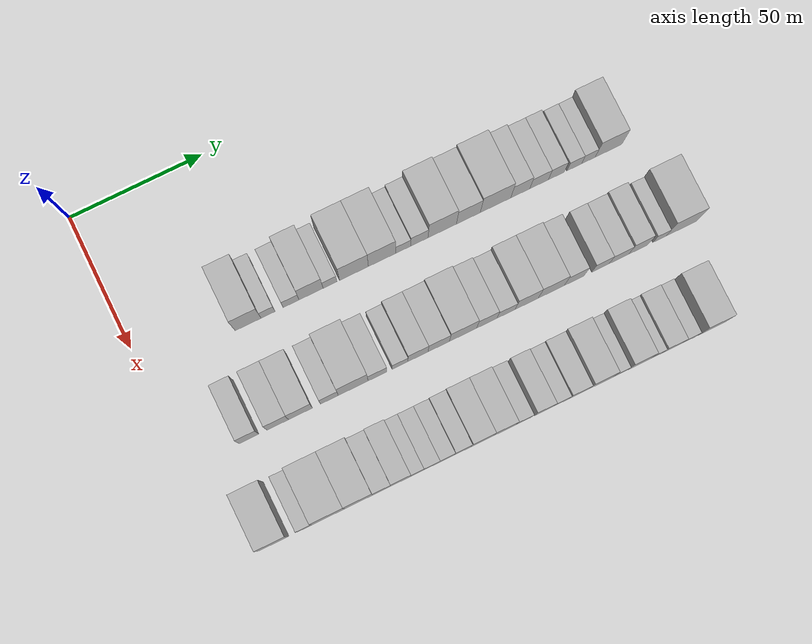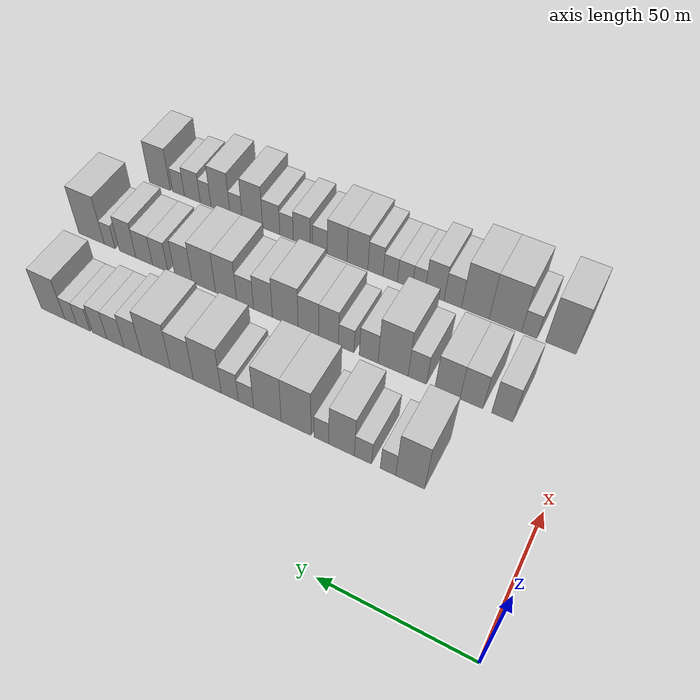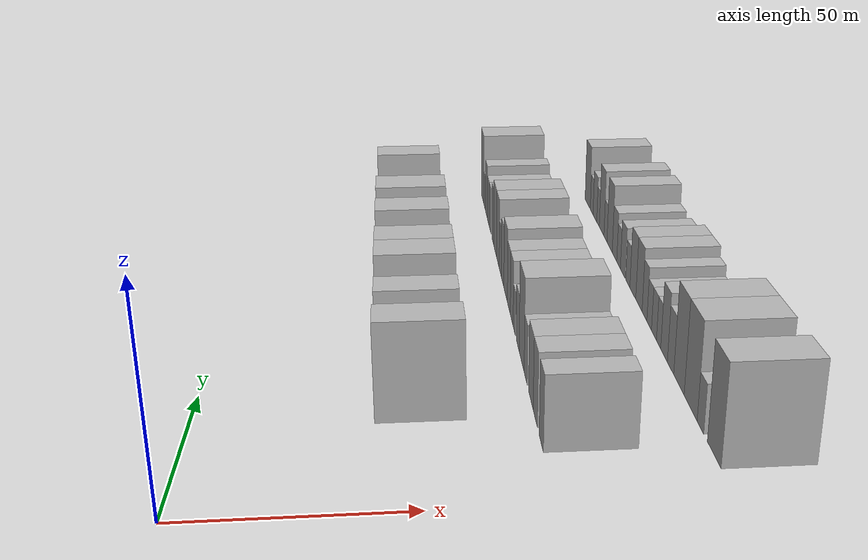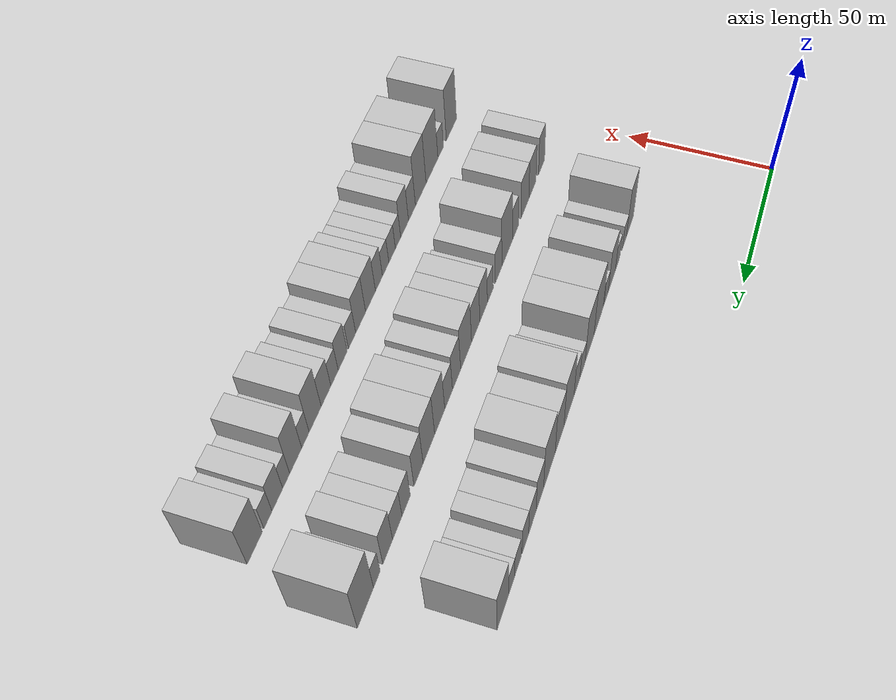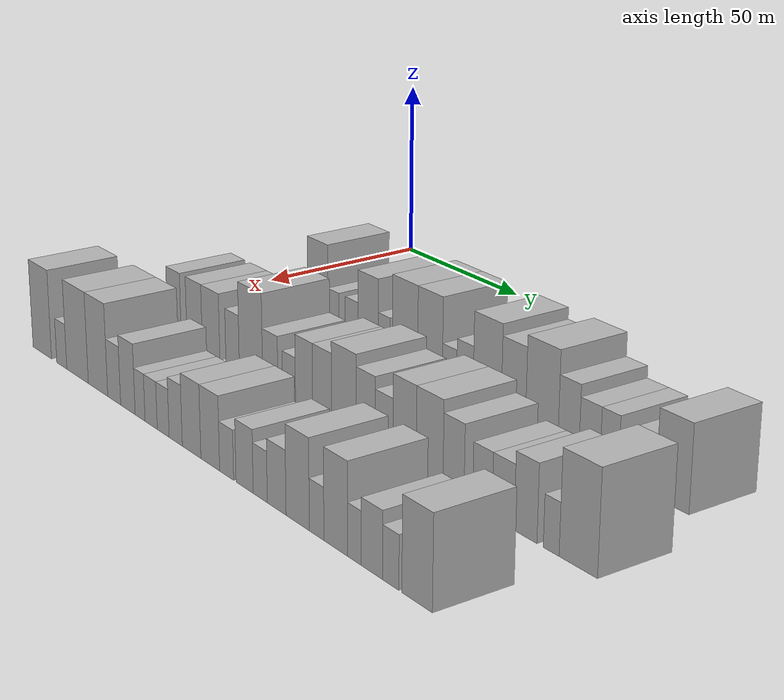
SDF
<sdf version="1.6">
 <world name="default">
  <model name="building_40">
   <static>1</static>
   <pose>50.0000 39.1611 0 0.000000 0.000000 0.000000</pose>
   <link name="link">
    <pose>0 0 12.00 0 0 0</pose>
    <collision name="collision"><geometry><box><size>20.0000 9.7006 24.0000</size></box></geometry></collision>
    <visual name="visual">
     <cast_shadows>0</cast_shadows>
     <geometry><box><size>20.0000 9.7006 24.0000</size></box></geometry>
     <material>
      <script>
       <uri>model://HANNAS_wall/materials/scripts</uri>
       <uri>model://HANNAS_wall/materials/textures</uri>
       <name>vrc/HANNAS_wall</name>
      </script>
     </material>
    </visual>
   </link>
  </model>
  <model name="building_41">
   <static>1</static>
   <pose>50.0000 46.6222 0 0.000000 0.000000 0.000000</pose>
   <link name="link">
    <pose>0 0 6.00 0 0 0</pose>
    <collision name="collision"><geometry><box><size>20.0000 5.2216 12.0000</size></box></geometry></collision>
    <visual name="visual">
     <cast_shadows>0</cast_shadows>
     <geometry><box><size>20.0000 5.2216 12.0000</size></box></geometry>
     <material>
      <script>
       <uri>model://HANNAS_wall/materials/scripts</uri>
       <uri>model://HANNAS_wall/materials/textures</uri>
       <name>vrc/HANNAS_wall</name>
      </script>
     </material>
    </visual>
   </link>
  </model>
  <model name="building_42">
   <static>1</static>
   <pose>50.0000 55.2175 0 0.000000 0.000000 0.000000</pose>
   <link name="link">
    <pose>0 0 6.00 0 0 0</pose>
    <collision name="collision"><geometry><box><size>20.0000 5.9689 12.0000</size></box></geometry></collision>
    <visual name="visual">
     <cast_shadows>0</cast_shadows>
     <geometry><box><size>20.0000 5.9689 12.0000</size></box></geometry>
     <material>
      <script>
       <uri>model://HANNAS_wall/materials/scripts</uri>
       <uri>model://HANNAS_wall/materials/textures</uri>
       <name>vrc/HANNAS_wall</name>
      </script>
     </material>
    </visual>
   </link>
  </model>
  <model name="building_43">
   <static>1</static>
   <pose>50.0000 62.7230 0 0.000000 0.000000 0.000000</pose>
   <link name="link">
    <pose>0 0 10.50 0 0 0</pose>
    <collision name="collision"><geometry><box><size>20.0000 9.0422 21.0000</size></box></geometry></collision>
    <visual name="visual">
     <cast_shadows>0</cast_shadows>
     <geometry><box><size>20.0000 9.0422 21.0000</size></box></geometry>
     <material>
      <script>
       <uri>model://HANNAS_wall/materials/scripts</uri>
       <uri>model://HANNAS_wall/materials/textures</uri>
       <name>vrc/HANNAS_wall</name>
      </script>
     </material>
    </visual>
   </link>
  </model>
  <model name="building_44">
   <static>1</static>
   <pose>50.0000 69.8419 0 0.000000 0.000000 0.000000</pose>
   <link name="link">
    <pose>0 0 6.00 0 0 0</pose>
    <collision name="collision"><geometry><box><size>20.0000 5.1956 12.0000</size></box></geometry></collision>
    <visual name="visual">
     <cast_shadows>0</cast_shadows>
     <geometry><box><size>20.0000 5.1956 12.0000</size></box></geometry>
     <material>
      <script>
       <uri>model://HANNAS_wall/materials/scripts</uri>
       <uri>model://HANNAS_wall/materials/textures</uri>
       <name>vrc/HANNAS_wall</name>
      </script>
     </material>
    </visual>
   </link>
  </model>
  <model name="building_45">
   <static>1</static>
   <pose>50.0000 78.8561 0 0.000000 0.000000 0.000000</pose>
   <link name="link">
    <pose>0 0 12.00 0 0 0</pose>
    <collision name="collision"><geometry><box><size>20.0000 10.8327 24.0000</size></box></geometry></collision>
    <visual name="visual">
     <cast_shadows>0</cast_shadows>
     <geometry><box><size>20.0000 10.8327 24.0000</size></box></geometry>
     <material>
      <script>
       <uri>model://HANNAS_wall/materials/scripts</uri>
       <uri>model://HANNAS_wall/materials/textures</uri>
       <name>vrc/HANNAS_wall</name>
      </script>
     </material>
    </visual>
   </link>
  </model>
  <model name="building_46">
   <static>1</static>
   <pose>50.0000 89.3941 0 0.000000 0.000000 0.000000</pose>
   <link name="link">
    <pose>0 0 12.00 0 0 0</pose>
    <collision name="collision"><geometry><box><size>20.0000 10.2433 24.0000</size></box></geometry></collision>
    <visual name="visual">
     <cast_shadows>0</cast_shadows>
     <geometry><box><size>20.0000 10.2433 24.0000</size></box></geometry>
     <material>
      <script>
       <uri>model://HANNAS_wall/materials/scripts</uri>
       <uri>model://HANNAS_wall/materials/textures</uri>
       <name>vrc/HANNAS_wall</name>
      </script>
     </material>
    </visual>
   </link>
  </model>
  <model name="building_47">
   <static>1</static>
   <pose>50.0000 97.3932 0 0.000000 0.000000 0.000000</pose>
   <link name="link">
    <pose>0 0 6.00 0 0 0</pose>
    <collision name="collision"><geometry><box><size>20.0000 5.7550 12.0000</size></box></geometry></collision>
    <visual name="visual">
     <cast_shadows>0</cast_shadows>
     <geometry><box><size>20.0000 5.7550 12.0000</size></box></geometry>
     <material>
      <script>
       <uri>model://HANNAS_wall/materials/scripts</uri>
       <uri>model://HANNAS_wall/materials/textures</uri>
       <name>vrc/HANNAS_wall</name>
      </script>
     </material>
    </visual>
   </link>
  </model>
  <model name="building_48">
   <static>1</static>
   <pose>50.0000 103.5259 0 0.000000 0.000000 0.000000</pose>
   <link name="link">
    <pose>0 0 7.50 0 0 0</pose>
    <collision name="collision"><geometry><box><size>20.0000 6.5104 15.0000</size></box></geometry></collision>
    <visual name="visual">
     <cast_shadows>0</cast_shadows>
     <geometry><box><size>20.0000 6.5104 15.0000</size></box></geometry>
     <material>
      <script>
       <uri>model://HANNAS_wall/materials/scripts</uri>
       <uri>model://HANNAS_wall/materials/textures</uri>
       <name>vrc/HANNAS_wall</name>
      </script>
     </material>
    </visual>
   </link>
  </model>
  <model name="building_49">
   <static>1</static>
   <pose>50.0000 112.1810 0 0.000000 0.000000 0.000000</pose>
   <link name="link">
    <pose>0 0 12.00 0 0 0</pose>
    <collision name="collision"><geometry><box><size>20.0000 10.7998 24.0000</size></box></geometry></collision>
    <visual name="visual">
     <cast_shadows>0</cast_shadows>
     <geometry><box><size>20.0000 10.7998 24.0000</size></box></geometry>
     <material>
      <script>
       <uri>model://HANNAS_wall/materials/scripts</uri>
       <uri>model://HANNAS_wall/materials/textures</uri>
       <name>vrc/HANNAS_wall</name>
      </script>
     </material>
    </visual>
   </link>
  </model>
  <model name="building_50">
   <static>1</static>
   <pose>50.0000 122.1033 0 0.000000 0.000000 0.000000</pose>
   <link name="link">
    <pose>0 0 10.50 0 0 0</pose>
    <collision name="collision"><geometry><box><size>20.0000 9.0449 21.0000</size></box></geometry></collision>
    <visual name="visual">
     <cast_shadows>0</cast_shadows>
     <geometry><box><size>20.0000 9.0449 21.0000</size></box></geometry>
     <material>
      <script>
       <uri>model://HANNAS_wall/materials/scripts</uri>
       <uri>model://HANNAS_wall/materials/textures</uri>
       <name>vrc/HANNAS_wall</name>
      </script>
     </material>
    </visual>
   </link>
  </model>
  <model name="building_51">
   <static>1</static>
   <pose>50.0000 132.4402 0 0.000000 0.000000 0.000000</pose>
   <link name="link">
    <pose>0 0 12.00 0 0 0</pose>
    <collision name="collision"><geometry><box><size>20.0000 11.6288 24.0000</size></box></geometry></collision>
    <visual name="visual">
     <cast_shadows>0</cast_shadows>
     <geometry><box><size>20.0000 11.6288 24.0000</size></box></geometry>
     <material>
      <script>
       <uri>model://HANNAS_wall/materials/scripts</uri>
       <uri>model://HANNAS_wall/materials/textures</uri>
       <name>vrc/HANNAS_wall</name>
      </script>
     </material>
    </visual>
   </link>
  </model>
  <model name="building_52">
   <static>1</static>
   <pose>50.0000 141.8896 0 0.000000 0.000000 0.000000</pose>
   <link name="link">
    <pose>0 0 9.00 0 0 0</pose>
    <collision name="collision"><geometry><box><size>20.0000 7.2701 18.0000</size></box></geometry></collision>
    <visual name="visual">
     <cast_shadows>0</cast_shadows>
     <geometry><box><size>20.0000 7.2701 18.0000</size></box></geometry>
     <material>
      <script>
       <uri>model://HANNAS_wall/materials/scripts</uri>
       <uri>model://HANNAS_wall/materials/textures</uri>
       <name>vrc/HANNAS_wall</name>
      </script>
     </material>
    </visual>
   </link>
  </model>
  <model name="building_53">
   <static>1</static>
   <pose>50.0000 149.0812 0 0.000000 0.000000 0.000000</pose>
   <link name="link">
    <pose>0 0 7.50 0 0 0</pose>
    <collision name="collision"><geometry><box><size>20.0000 7.1130 15.0000</size></box></geometry></collision>
    <visual name="visual">
     <cast_shadows>0</cast_shadows>
     <geometry><box><size>20.0000 7.1130 15.0000</size></box></geometry>
     <material>
      <script>
       <uri>model://HANNAS_wall/materials/scripts</uri>
       <uri>model://HANNAS_wall/materials/textures</uri>
       <name>vrc/HANNAS_wall</name>
      </script>
     </material>
    </visual>
   </link>
  </model>
  <model name="building_54">
   <static>1</static>
   <pose>50.0000 155.6776 0 0.000000 0.000000 0.000000</pose>
   <link name="link">
    <pose>0 0 7.50 0 0 0</pose>
    <collision name="collision"><geometry><box><size>20.0000 6.0799 15.0000</size></box></geometry></collision>
    <visual name="visual">
     <cast_shadows>0</cast_shadows>
     <geometry><box><size>20.0000 6.0799 15.0000</size></box></geometry>
     <material>
      <script>
       <uri>model://HANNAS_wall/materials/scripts</uri>
       <uri>model://HANNAS_wall/materials/textures</uri>
       <name>vrc/HANNAS_wall</name>
      </script>
     </material>
    </visual>
   </link>
  </model>
  <model name="building_55">
   <static>1</static>
   <pose>50.0000 162.5369 0 0.000000 0.000000 0.000000</pose>
   <link name="link">
    <pose>0 0 6.00 0 0 0</pose>
    <collision name="collision"><geometry><box><size>20.0000 5.6387 12.0000</size></box></geometry></collision>
    <visual name="visual">
     <cast_shadows>0</cast_shadows>
     <geometry><box><size>20.0000 5.6387 12.0000</size></box></geometry>
     <material>
      <script>
       <uri>model://HANNAS_wall/materials/scripts</uri>
       <uri>model://HANNAS_wall/materials/textures</uri>
       <name>vrc/HANNAS_wall</name>
      </script>
     </material>
    </visual>
   </link>
  </model>
  <model name="building_56">
   <static>1</static>
   <pose>50.0000 167.9550 0 0.000000 0.000000 0.000000</pose>
   <link name="link">
    <pose>0 0 6.00 0 0 0</pose>
    <collision name="collision"><geometry><box><size>20.0000 5.1975 12.0000</size></box></geometry></collision>
    <visual name="visual">
     <cast_shadows>0</cast_shadows>
     <geometry><box><size>20.0000 5.1975 12.0000</size></box></geometry>
     <material>
      <script>
       <uri>model://HANNAS_wall/materials/scripts</uri>
       <uri>model://HANNAS_wall/materials/textures</uri>
       <name>vrc/HANNAS_wall</name>
      </script>
     </material>
    </visual>
   </link>
  </model>
  <model name="building_57">
   <static>1</static>
   <pose>50.0000 175.6868 0 0.000000 0.000000 0.000000</pose>
   <link name="link">
    <pose>0 0 10.50 0 0 0</pose>
    <collision name="collision"><geometry><box><size>20.0000 10.2662 21.0000</size></box></geometry></collision>
    <visual name="visual">
     <cast_shadows>0</cast_shadows>
     <geometry><box><size>20.0000 10.2662 21.0000</size></box></geometry>
     <material>
      <script>
       <uri>model://HANNAS_wall/materials/scripts</uri>
       <uri>model://HANNAS_wall/materials/textures</uri>
       <name>vrc/HANNAS_wall</name>
      </script>
     </material>
    </visual>
   </link>
  </model>
  <model name="building_121">
   <static>1</static>
   <pose>85.0000 22.9556 0 0.000000 0.000000 0.000000</pose>
   <link name="link">
    <pose>0 0 9.00 0 0 0</pose>
    <collision name="collision"><geometry><box><size>20.0000 7.2562 18.0000</size></box></geometry></collision>
    <visual name="visual">
     <cast_shadows>0</cast_shadows>
     <geometry><box><size>20.0000 7.2562 18.0000</size></box></geometry>
     <material>
      <script>
       <uri>model://HANNAS_wall/materials/scripts</uri>
       <uri>model://HANNAS_wall/materials/textures</uri>
       <name>vrc/HANNAS_wall</name>
      </script>
     </material>
    </visual>
   </link>
  </model>
  <model name="building_122">
   <static>1</static>
   <pose>85.0000 33.5926 0 0.000000 0.000000 0.000000</pose>
   <link name="link">
    <pose>0 0 9.00 0 0 0</pose>
    <collision name="collision"><geometry><box><size>20.0000 8.0178 18.0000</size></box></geometry></collision>
    <visual name="visual">
     <cast_shadows>0</cast_shadows>
     <geometry><box><size>20.0000 8.0178 18.0000</size></box></geometry>
     <material>
      <script>
       <uri>model://HANNAS_wall/materials/scripts</uri>
       <uri>model://HANNAS_wall/materials/textures</uri>
       <name>vrc/HANNAS_wall</name>
      </script>
     </material>
    </visual>
   </link>
  </model>
  <model name="building_123">
   <static>1</static>
   <pose>85.0000 42.0338 0 0.000000 0.000000 0.000000</pose>
   <link name="link">
    <pose>0 0 9.00 0 0 0</pose>
    <collision name="collision"><geometry><box><size>20.0000 8.8647 18.0000</size></box></geometry></collision>
    <visual name="visual">
     <cast_shadows>0</cast_shadows>
     <geometry><box><size>20.0000 8.8647 18.0000</size></box></geometry>
     <material>
      <script>
       <uri>model://HANNAS_wall/materials/scripts</uri>
       <uri>model://HANNAS_wall/materials/textures</uri>
       <name>vrc/HANNAS_wall</name>
      </script>
     </material>
    </visual>
   </link>
  </model>
  <model name="building_124">
   <static>1</static>
   <pose>85.0000 52.7682 0 0.000000 0.000000 0.000000</pose>
   <link name="link">
    <pose>0 0 7.50 0 0 0</pose>
    <collision name="collision"><geometry><box><size>20.0000 6.6041 15.0000</size></box></geometry></collision>
    <visual name="visual">
     <cast_shadows>0</cast_shadows>
     <geometry><box><size>20.0000 6.6041 15.0000</size></box></geometry>
     <material>
      <script>
       <uri>model://HANNAS_wall/materials/scripts</uri>
       <uri>model://HANNAS_wall/materials/textures</uri>
       <name>vrc/HANNAS_wall</name>
      </script>
     </material>
    </visual>
   </link>
  </model>
  <model name="building_125">
   <static>1</static>
   <pose>85.0000 61.6194 0 0.000000 0.000000 0.000000</pose>
   <link name="link">
    <pose>0 0 12.00 0 0 0</pose>
    <collision name="collision"><geometry><box><size>20.0000 11.0984 24.0000</size></box></geometry></collision>
    <visual name="visual">
     <cast_shadows>0</cast_shadows>
     <geometry><box><size>20.0000 11.0984 24.0000</size></box></geometry>
     <material>
      <script>
       <uri>model://HANNAS_wall/materials/scripts</uri>
       <uri>model://HANNAS_wall/materials/textures</uri>
       <name>vrc/HANNAS_wall</name>
      </script>
     </material>
    </visual>
   </link>
  </model>
  <model name="building_126">
   <static>1</static>
   <pose>85.0000 70.6845 0 0.000000 0.000000 0.000000</pose>
   <link name="link">
    <pose>0 0 7.50 0 0 0</pose>
    <collision name="collision"><geometry><box><size>20.0000 7.0317 15.0000</size></box></geometry></collision>
    <visual name="visual">
     <cast_shadows>0</cast_shadows>
     <geometry><box><size>20.0000 7.0317 15.0000</size></box></geometry>
     <material>
      <script>
       <uri>model://HANNAS_wall/materials/scripts</uri>
       <uri>model://HANNAS_wall/materials/textures</uri>
       <name>vrc/HANNAS_wall</name>
      </script>
     </material>
    </visual>
   </link>
  </model>
  <model name="building_127">
   <static>1</static>
   <pose>85.0000 79.1340 0 0.000000 0.000000 0.000000</pose>
   <link name="link">
    <pose>0 0 6.00 0 0 0</pose>
    <collision name="collision"><geometry><box><size>20.0000 5.8673 12.0000</size></box></geometry></collision>
    <visual name="visual">
     <cast_shadows>0</cast_shadows>
     <geometry><box><size>20.0000 5.8673 12.0000</size></box></geometry>
     <material>
      <script>
       <uri>model://HANNAS_wall/materials/scripts</uri>
       <uri>model://HANNAS_wall/materials/textures</uri>
       <name>vrc/HANNAS_wall</name>
      </script>
     </material>
    </visual>
   </link>
  </model>
  <model name="building_128">
   <static>1</static>
   <pose>85.0000 85.8305 0 0.000000 0.000000 0.000000</pose>
   <link name="link">
    <pose>0 0 9.00 0 0 0</pose>
    <collision name="collision"><geometry><box><size>20.0000 7.5258 18.0000</size></box></geometry></collision>
    <visual name="visual">
     <cast_shadows>0</cast_shadows>
     <geometry><box><size>20.0000 7.5258 18.0000</size></box></geometry>
     <material>
      <script>
       <uri>model://HANNAS_wall/materials/scripts</uri>
       <uri>model://HANNAS_wall/materials/textures</uri>
       <name>vrc/HANNAS_wall</name>
      </script>
     </material>
    </visual>
   </link>
  </model>
  <model name="building_129">
   <static>1</static>
   <pose>85.0000 93.6277 0 0.000000 0.000000 0.000000</pose>
   <link name="link">
    <pose>0 0 9.00 0 0 0</pose>
    <collision name="collision"><geometry><box><size>20.0000 8.0686 18.0000</size></box></geometry></collision>
    <visual name="visual">
     <cast_shadows>0</cast_shadows>
     <geometry><box><size>20.0000 8.0686 18.0000</size></box></geometry>
     <material>
      <script>
       <uri>model://HANNAS_wall/materials/scripts</uri>
       <uri>model://HANNAS_wall/materials/textures</uri>
       <name>vrc/HANNAS_wall</name>
      </script>
     </material>
    </visual>
   </link>
  </model>
  <model name="building_130">
   <static>1</static>
   <pose>85.0000 102.7745 0 0.000000 0.000000 0.000000</pose>
   <link name="link">
    <pose>0 0 10.50 0 0 0</pose>
    <collision name="collision"><geometry><box><size>20.0000 10.2250 21.0000</size></box></geometry></collision>
    <visual name="visual">
     <cast_shadows>0</cast_shadows>
     <geometry><box><size>20.0000 10.2250 21.0000</size></box></geometry>
     <material>
      <script>
       <uri>model://HANNAS_wall/materials/scripts</uri>
       <uri>model://HANNAS_wall/materials/textures</uri>
       <name>vrc/HANNAS_wall</name>
      </script>
     </material>
    </visual>
   </link>
  </model>
  <model name="building_131">
   <static>1</static>
   <pose>85.0000 111.6667 0 0.000000 0.000000 0.000000</pose>
   <link name="link">
    <pose>0 0 9.00 0 0 0</pose>
    <collision name="collision"><geometry><box><size>20.0000 7.5595 18.0000</size></box></geometry></collision>
    <visual name="visual">
     <cast_shadows>0</cast_shadows>
     <geometry><box><size>20.0000 7.5595 18.0000</size></box></geometry>
     <material>
      <script>
       <uri>model://HANNAS_wall/materials/scripts</uri>
       <uri>model://HANNAS_wall/materials/textures</uri>
       <name>vrc/HANNAS_wall</name>
      </script>
     </material>
    </visual>
   </link>
  </model>
  <model name="building_132">
   <static>1</static>
   <pose>85.0000 118.8960 0 0.000000 0.000000 0.000000</pose>
   <link name="link">
    <pose>0 0 7.50 0 0 0</pose>
    <collision name="collision"><geometry><box><size>20.0000 6.8991 15.0000</size></box></geometry></collision>
    <visual name="visual">
     <cast_shadows>0</cast_shadows>
     <geometry><box><size>20.0000 6.8991 15.0000</size></box></geometry>
     <material>
      <script>
       <uri>model://HANNAS_wall/materials/scripts</uri>
       <uri>model://HANNAS_wall/materials/textures</uri>
       <name>vrc/HANNAS_wall</name>
      </script>
     </material>
    </visual>
   </link>
  </model>
  <model name="building_133">
   <static>1</static>
   <pose>85.0000 126.7453 0 0.000000 0.000000 0.000000</pose>
   <link name="link">
    <pose>0 0 10.50 0 0 0</pose>
    <collision name="collision"><geometry><box><size>20.0000 8.7996 21.0000</size></box></geometry></collision>
    <visual name="visual">
     <cast_shadows>0</cast_shadows>
     <geometry><box><size>20.0000 8.7996 21.0000</size></box></geometry>
     <material>
      <script>
       <uri>model://HANNAS_wall/materials/scripts</uri>
       <uri>model://HANNAS_wall/materials/textures</uri>
       <name>vrc/HANNAS_wall</name>
      </script>
     </material>
    </visual>
   </link>
  </model>
  <model name="building_134">
   <static>1</static>
   <pose>85.0000 136.0705 0 0.000000 0.000000 0.000000</pose>
   <link name="link">
    <pose>0 0 10.50 0 0 0</pose>
    <collision name="collision"><geometry><box><size>20.0000 9.8508 21.0000</size></box></geometry></collision>
    <visual name="visual">
     <cast_shadows>0</cast_shadows>
     <geometry><box><size>20.0000 9.8508 21.0000</size></box></geometry>
     <material>
      <script>
       <uri>model://HANNAS_wall/materials/scripts</uri>
       <uri>model://HANNAS_wall/materials/textures</uri>
       <name>vrc/HANNAS_wall</name>
      </script>
     </material>
    </visual>
   </link>
  </model>
  <model name="building_135">
   <static>1</static>
   <pose>85.0000 144.7362 0 0.000000 0.000000 0.000000</pose>
   <link name="link">
    <pose>0 0 9.00 0 0 0</pose>
    <collision name="collision"><geometry><box><size>20.0000 7.4805 18.0000</size></box></geometry></collision>
    <visual name="visual">
     <cast_shadows>0</cast_shadows>
     <geometry><box><size>20.0000 7.4805 18.0000</size></box></geometry>
     <material>
      <script>
       <uri>model://HANNAS_wall/materials/scripts</uri>
       <uri>model://HANNAS_wall/materials/textures</uri>
       <name>vrc/HANNAS_wall</name>
      </script>
     </material>
    </visual>
   </link>
  </model>
  <model name="building_136">
   <static>1</static>
   <pose>85.0000 154.7896 0 0.000000 0.000000 0.000000</pose>
   <link name="link">
    <pose>0 0 7.50 0 0 0</pose>
    <collision name="collision"><geometry><box><size>20.0000 6.6264 15.0000</size></box></geometry></collision>
    <visual name="visual">
     <cast_shadows>0</cast_shadows>
     <geometry><box><size>20.0000 6.6264 15.0000</size></box></geometry>
     <material>
      <script>
       <uri>model://HANNAS_wall/materials/scripts</uri>
       <uri>model://HANNAS_wall/materials/textures</uri>
       <name>vrc/HANNAS_wall</name>
      </script>
     </material>
    </visual>
   </link>
  </model>
  <model name="building_137">
   <static>1</static>
   <pose>85.0000 161.7868 0 0.000000 0.000000 0.000000</pose>
   <link name="link">
    <pose>0 0 7.50 0 0 0</pose>
    <collision name="collision"><geometry><box><size>20.0000 7.3680 15.0000</size></box></geometry></collision>
    <visual name="visual">
     <cast_shadows>0</cast_shadows>
     <geometry><box><size>20.0000 7.3680 15.0000</size></box></geometry>
     <material>
      <script>
       <uri>model://HANNAS_wall/materials/scripts</uri>
       <uri>model://HANNAS_wall/materials/textures</uri>
       <name>vrc/HANNAS_wall</name>
      </script>
     </material>
    </visual>
   </link>
  </model>
  <model name="building_138">
   <static>1</static>
   <pose>85.0000 169.1542 0 0.000000 0.000000 0.000000</pose>
   <link name="link">
    <pose>0 0 9.00 0 0 0</pose>
    <collision name="collision"><geometry><box><size>20.0000 7.3668 18.0000</size></box></geometry></collision>
    <visual name="visual">
     <cast_shadows>0</cast_shadows>
     <geometry><box><size>20.0000 7.3668 18.0000</size></box></geometry>
     <material>
      <script>
       <uri>model://HANNAS_wall/materials/scripts</uri>
       <uri>model://HANNAS_wall/materials/textures</uri>
       <name>vrc/HANNAS_wall</name>
      </script>
     </material>
    </visual>
   </link>
  </model>
  <model name="building_139">
   <static>1</static>
   <pose>85.0000 177.3093 0 0.000000 0.000000 0.000000</pose>
   <link name="link">
    <pose>0 0 6.00 0 0 0</pose>
    <collision name="collision"><geometry><box><size>20.0000 4.9435 12.0000</size></box></geometry></collision>
    <visual name="visual">
     <cast_shadows>0</cast_shadows>
     <geometry><box><size>20.0000 4.9435 12.0000</size></box></geometry>
     <material>
      <script>
       <uri>model://HANNAS_wall/materials/scripts</uri>
       <uri>model://HANNAS_wall/materials/textures</uri>
       <name>vrc/HANNAS_wall</name>
      </script>
     </material>
    </visual>
   </link>
  </model>
  <model name="building_140">
   <static>1</static>
   <pose>85.0000 185.5911 0 0.000000 0.000000 0.000000</pose>
   <link name="link">
    <pose>0 0 12.00 0 0 0</pose>
    <collision name="collision"><geometry><box><size>20.0000 11.6200 24.0000</size></box></geometry></collision>
    <visual name="visual">
     <cast_shadows>0</cast_shadows>
     <geometry><box><size>20.0000 11.6200 24.0000</size></box></geometry>
     <material>
      <script>
       <uri>model://HANNAS_wall/materials/scripts</uri>
       <uri>model://HANNAS_wall/materials/textures</uri>
       <name>vrc/HANNAS_wall</name>
      </script>
     </material>
    </visual>
   </link>
  </model>
  <model name="building_203">
   <static>1</static>
   <pose>120.0000 15.5896 0 0.000000 0.000000 0.000000</pose>
   <link name="link">
    <pose>0 0 12.00 0 0 0</pose>
    <collision name="collision"><geometry><box><size>20.0000 10.8165 24.0000</size></box></geometry></collision>
    <visual name="visual">
     <cast_shadows>0</cast_shadows>
     <geometry><box><size>20.0000 10.8165 24.0000</size></box></geometry>
     <material>
      <script>
       <uri>model://HANNAS_wall/materials/scripts</uri>
       <uri>model://HANNAS_wall/materials/textures</uri>
       <name>vrc/HANNAS_wall</name>
      </script>
     </material>
    </visual>
   </link>
  </model>
  <model name="building_204">
   <static>1</static>
   <pose>120.0000 26.8373 0 0.000000 0.000000 0.000000</pose>
   <link name="link">
    <pose>0 0 6.00 0 0 0</pose>
    <collision name="collision"><geometry><box><size>20.0000 5.6790 12.0000</size></box></geometry></collision>
    <visual name="visual">
     <cast_shadows>0</cast_shadows>
     <geometry><box><size>20.0000 5.6790 12.0000</size></box></geometry>
     <material>
      <script>
       <uri>model://HANNAS_wall/materials/scripts</uri>
       <uri>model://HANNAS_wall/materials/textures</uri>
       <name>vrc/HANNAS_wall</name>
      </script>
     </material>
    </visual>
   </link>
  </model>
  <model name="building_205">
   <static>1</static>
   <pose>120.0000 35.6090 0 0.000000 0.000000 0.000000</pose>
   <link name="link">
    <pose>0 0 12.00 0 0 0</pose>
    <collision name="collision"><geometry><box><size>20.0000 11.8643 24.0000</size></box></geometry></collision>
    <visual name="visual">
     <cast_shadows>0</cast_shadows>
     <geometry><box><size>20.0000 11.8643 24.0000</size></box></geometry>
     <material>
      <script>
       <uri>model://HANNAS_wall/materials/scripts</uri>
       <uri>model://HANNAS_wall/materials/textures</uri>
       <name>vrc/HANNAS_wall</name>
      </script>
     </material>
    </visual>
   </link>
  </model>
  <model name="building_206">
   <static>1</static>
   <pose>120.0000 46.7039 0 0.000000 0.000000 0.000000</pose>
   <link name="link">
    <pose>0 0 12.00 0 0 0</pose>
    <collision name="collision"><geometry><box><size>20.0000 10.3256 24.0000</size></box></geometry></collision>
    <visual name="visual">
     <cast_shadows>0</cast_shadows>
     <geometry><box><size>20.0000 10.3256 24.0000</size></box></geometry>
     <material>
      <script>
       <uri>model://HANNAS_wall/materials/scripts</uri>
       <uri>model://HANNAS_wall/materials/textures</uri>
       <name>vrc/HANNAS_wall</name>
      </script>
     </material>
    </visual>
   </link>
  </model>
  <model name="building_207">
   <static>1</static>
   <pose>120.0000 55.2008 0 0.000000 0.000000 0.000000</pose>
   <link name="link">
    <pose>0 0 7.50 0 0 0</pose>
    <collision name="collision"><geometry><box><size>20.0000 6.6683 15.0000</size></box></geometry></collision>
    <visual name="visual">
     <cast_shadows>0</cast_shadows>
     <geometry><box><size>20.0000 6.6683 15.0000</size></box></geometry>
     <material>
      <script>
       <uri>model://HANNAS_wall/materials/scripts</uri>
       <uri>model://HANNAS_wall/materials/textures</uri>
       <name>vrc/HANNAS_wall</name>
      </script>
     </material>
    </visual>
   </link>
  </model>
  <model name="building_208">
   <static>1</static>
   <pose>120.0000 62.2033 0 0.000000 0.000000 0.000000</pose>
   <link name="link">
    <pose>0 0 9.00 0 0 0</pose>
    <collision name="collision"><geometry><box><size>20.0000 7.3367 18.0000</size></box></geometry></collision>
    <visual name="visual">
     <cast_shadows>0</cast_shadows>
     <geometry><box><size>20.0000 7.3367 18.0000</size></box></geometry>
     <material>
      <script>
       <uri>model://HANNAS_wall/materials/scripts</uri>
       <uri>model://HANNAS_wall/materials/textures</uri>
       <name>vrc/HANNAS_wall</name>
      </script>
     </material>
    </visual>
   </link>
  </model>
  <model name="building_209">
   <static>1</static>
   <pose>120.0000 68.3135 0 0.000000 0.000000 0.000000</pose>
   <link name="link">
    <pose>0 0 6.00 0 0 0</pose>
    <collision name="collision"><geometry><box><size>20.0000 4.8836 12.0000</size></box></geometry></collision>
    <visual name="visual">
     <cast_shadows>0</cast_shadows>
     <geometry><box><size>20.0000 4.8836 12.0000</size></box></geometry>
     <material>
      <script>
       <uri>model://HANNAS_wall/materials/scripts</uri>
       <uri>model://HANNAS_wall/materials/textures</uri>
       <name>vrc/HANNAS_wall</name>
      </script>
     </material>
    </visual>
   </link>
  </model>
  <model name="building_210">
   <static>1</static>
   <pose>120.0000 73.7065 0 0.000000 0.000000 0.000000</pose>
   <link name="link">
    <pose>0 0 6.00 0 0 0</pose>
    <collision name="collision"><geometry><box><size>20.0000 5.9024 12.0000</size></box></geometry></collision>
    <visual name="visual">
     <cast_shadows>0</cast_shadows>
     <geometry><box><size>20.0000 5.9024 12.0000</size></box></geometry>
     <material>
      <script>
       <uri>model://HANNAS_wall/materials/scripts</uri>
       <uri>model://HANNAS_wall/materials/textures</uri>
       <name>vrc/HANNAS_wall</name>
      </script>
     </material>
    </visual>
   </link>
  </model>
  <model name="building_211">
   <static>1</static>
   <pose>120.0000 79.4800 0 0.000000 0.000000 0.000000</pose>
   <link name="link">
    <pose>0 0 6.00 0 0 0</pose>
    <collision name="collision"><geometry><box><size>20.0000 5.6447 12.0000</size></box></geometry></collision>
    <visual name="visual">
     <cast_shadows>0</cast_shadows>
     <geometry><box><size>20.0000 5.6447 12.0000</size></box></geometry>
     <material>
      <script>
       <uri>model://HANNAS_wall/materials/scripts</uri>
       <uri>model://HANNAS_wall/materials/textures</uri>
       <name>vrc/HANNAS_wall</name>
      </script>
     </material>
    </visual>
   </link>
  </model>
  <model name="building_212">
   <static>1</static>
   <pose>120.0000 85.3722 0 0.000000 0.000000 0.000000</pose>
   <link name="link">
    <pose>0 0 7.50 0 0 0</pose>
    <collision name="collision"><geometry><box><size>20.0000 6.1397 15.0000</size></box></geometry></collision>
    <visual name="visual">
     <cast_shadows>0</cast_shadows>
     <geometry><box><size>20.0000 6.1397 15.0000</size></box></geometry>
     <material>
      <script>
       <uri>model://HANNAS_wall/materials/scripts</uri>
       <uri>model://HANNAS_wall/materials/textures</uri>
       <name>vrc/HANNAS_wall</name>
      </script>
     </material>
    </visual>
   </link>
  </model>
  <model name="building_213">
   <static>1</static>
   <pose>120.0000 92.6562 0 0.000000 0.000000 0.000000</pose>
   <link name="link">
    <pose>0 0 9.00 0 0 0</pose>
    <collision name="collision"><geometry><box><size>20.0000 8.4281 18.0000</size></box></geometry></collision>
    <visual name="visual">
     <cast_shadows>0</cast_shadows>
     <geometry><box><size>20.0000 8.4281 18.0000</size></box></geometry>
     <material>
      <script>
       <uri>model://HANNAS_wall/materials/scripts</uri>
       <uri>model://HANNAS_wall/materials/textures</uri>
       <name>vrc/HANNAS_wall</name>
      </script>
     </material>
    </visual>
   </link>
  </model>
  <model name="building_214">
   <static>1</static>
   <pose>120.0000 100.9896 0 0.000000 0.000000 0.000000</pose>
   <link name="link">
    <pose>0 0 9.00 0 0 0</pose>
    <collision name="collision"><geometry><box><size>20.0000 8.2388 18.0000</size></box></geometry></collision>
    <visual name="visual">
     <cast_shadows>0</cast_shadows>
     <geometry><box><size>20.0000 8.2388 18.0000</size></box></geometry>
     <material>
      <script>
       <uri>model://HANNAS_wall/materials/scripts</uri>
       <uri>model://HANNAS_wall/materials/textures</uri>
       <name>vrc/HANNAS_wall</name>
      </script>
     </material>
    </visual>
   </link>
  </model>
  <model name="building_215">
   <static>1</static>
   <pose>120.0000 108.1079 0 0.000000 0.000000 0.000000</pose>
   <link name="link">
    <pose>0 0 6.00 0 0 0</pose>
    <collision name="collision"><geometry><box><size>20.0000 5.9976 12.0000</size></box></geometry></collision>
    <visual name="visual">
     <cast_shadows>0</cast_shadows>
     <geometry><box><size>20.0000 5.9976 12.0000</size></box></geometry>
     <material>
      <script>
       <uri>model://HANNAS_wall/materials/scripts</uri>
       <uri>model://HANNAS_wall/materials/textures</uri>
       <name>vrc/HANNAS_wall</name>
      </script>
     </material>
    </visual>
   </link>
  </model>
  <model name="building_216">
   <static>1</static>
   <pose>120.0000 115.6822 0 0.000000 0.000000 0.000000</pose>
   <link name="link">
    <pose>0 0 7.50 0 0 0</pose>
    <collision name="collision"><geometry><box><size>20.0000 7.1509 15.0000</size></box></geometry></collision>
    <visual name="visual">
     <cast_shadows>0</cast_shadows>
     <geometry><box><size>20.0000 7.1509 15.0000</size></box></geometry>
     <material>
      <script>
       <uri>model://HANNAS_wall/materials/scripts</uri>
       <uri>model://HANNAS_wall/materials/textures</uri>
       <name>vrc/HANNAS_wall</name>
      </script>
     </material>
    </visual>
   </link>
  </model>
  <model name="building_217">
   <static>1</static>
   <pose>120.0000 122.1319 0 0.000000 0.000000 0.000000</pose>
   <link name="link">
    <pose>0 0 6.00 0 0 0</pose>
    <collision name="collision"><geometry><box><size>20.0000 5.7485 12.0000</size></box></geometry></collision>
    <visual name="visual">
     <cast_shadows>0</cast_shadows>
     <geometry><box><size>20.0000 5.7485 12.0000</size></box></geometry>
     <material>
      <script>
       <uri>model://HANNAS_wall/materials/scripts</uri>
       <uri>model://HANNAS_wall/materials/textures</uri>
       <name>vrc/HANNAS_wall</name>
      </script>
     </material>
    </visual>
   </link>
  </model>
  <model name="building_218">
   <static>1</static>
   <pose>120.0000 128.7153 0 0.000000 0.000000 0.000000</pose>
   <link name="link">
    <pose>0 0 7.50 0 0 0</pose>
    <collision name="collision"><geometry><box><size>20.0000 7.4182 15.0000</size></box></geometry></collision>
    <visual name="visual">
     <cast_shadows>0</cast_shadows>
     <geometry><box><size>20.0000 7.4182 15.0000</size></box></geometry>
     <material>
      <script>
       <uri>model://HANNAS_wall/materials/scripts</uri>
       <uri>model://HANNAS_wall/materials/textures</uri>
       <name>vrc/HANNAS_wall</name>
      </script>
     </material>
    </visual>
   </link>
  </model>
  <model name="building_219">
   <static>1</static>
   <pose>120.0000 136.9016 0 0.000000 0.000000 0.000000</pose>
   <link name="link">
    <pose>0 0 10.50 0 0 0</pose>
    <collision name="collision"><geometry><box><size>20.0000 8.9543 21.0000</size></box></geometry></collision>
    <visual name="visual">
     <cast_shadows>0</cast_shadows>
     <geometry><box><size>20.0000 8.9543 21.0000</size></box></geometry>
     <material>
      <script>
       <uri>model://HANNAS_wall/materials/scripts</uri>
       <uri>model://HANNAS_wall/materials/textures</uri>
       <name>vrc/HANNAS_wall</name>
      </script>
     </material>
    </visual>
   </link>
  </model>
  <model name="building_220">
   <static>1</static>
   <pose>120.0000 144.1037 0 0.000000 0.000000 0.000000</pose>
   <link name="link">
    <pose>0 0 6.00 0 0 0</pose>
    <collision name="collision"><geometry><box><size>20.0000 5.4500 12.0000</size></box></geometry></collision>
    <visual name="visual">
     <cast_shadows>0</cast_shadows>
     <geometry><box><size>20.0000 5.4500 12.0000</size></box></geometry>
     <material>
      <script>
       <uri>model://HANNAS_wall/materials/scripts</uri>
       <uri>model://HANNAS_wall/materials/textures</uri>
       <name>vrc/HANNAS_wall</name>
      </script>
     </material>
    </visual>
   </link>
  </model>
  <model name="building_221">
   <static>1</static>
   <pose>120.0000 151.1116 0 0.000000 0.000000 0.000000</pose>
   <link name="link">
    <pose>0 0 10.50 0 0 0</pose>
    <collision name="collision"><geometry><box><size>20.0000 8.5658 21.0000</size></box></geometry></collision>
    <visual name="visual">
     <cast_shadows>0</cast_shadows>
     <geometry><box><size>20.0000 8.5658 21.0000</size></box></geometry>
     <material>
      <script>
       <uri>model://HANNAS_wall/materials/scripts</uri>
       <uri>model://HANNAS_wall/materials/textures</uri>
       <name>vrc/HANNAS_wall</name>
      </script>
     </material>
    </visual>
   </link>
  </model>
  <model name="building_222">
   <static>1</static>
   <pose>120.0000 157.8124 0 0.000000 0.000000 0.000000</pose>
   <link name="link">
    <pose>0 0 6.00 0 0 0</pose>
    <collision name="collision"><geometry><box><size>20.0000 4.8357 12.0000</size></box></geometry></collision>
    <visual name="visual">
     <cast_shadows>0</cast_shadows>
     <geometry><box><size>20.0000 4.8357 12.0000</size></box></geometry>
     <material>
      <script>
       <uri>model://HANNAS_wall/materials/scripts</uri>
       <uri>model://HANNAS_wall/materials/textures</uri>
       <name>vrc/HANNAS_wall</name>
      </script>
     </material>
    </visual>
   </link>
  </model>
  <model name="building_223">
   <static>1</static>
   <pose>120.0000 163.8840 0 0.000000 0.000000 0.000000</pose>
   <link name="link">
    <pose>0 0 7.50 0 0 0</pose>
    <collision name="collision"><geometry><box><size>20.0000 7.3076 15.0000</size></box></geometry></collision>
    <visual name="visual">
     <cast_shadows>0</cast_shadows>
     <geometry><box><size>20.0000 7.3076 15.0000</size></box></geometry>
     <material>
      <script>
       <uri>model://HANNAS_wall/materials/scripts</uri>
       <uri>model://HANNAS_wall/materials/textures</uri>
       <name>vrc/HANNAS_wall</name>
      </script>
     </material>
    </visual>
   </link>
  </model>
  <model name="building_224">
   <static>1</static>
   <pose>120.0000 170.2842 0 0.000000 0.000000 0.000000</pose>
   <link name="link">
    <pose>0 0 6.00 0 0 0</pose>
    <collision name="collision"><geometry><box><size>20.0000 5.4929 12.0000</size></box></geometry></collision>
    <visual name="visual">
     <cast_shadows>0</cast_shadows>
     <geometry><box><size>20.0000 5.4929 12.0000</size></box></geometry>
     <material>
      <script>
       <uri>model://HANNAS_wall/materials/scripts</uri>
       <uri>model://HANNAS_wall/materials/textures</uri>
       <name>vrc/HANNAS_wall</name>
      </script>
     </material>
    </visual>
   </link>
  </model>
  <model name="building_225">
   <static>1</static>
   <pose>120.0000 178.9679 0 0.000000 0.000000 0.000000</pose>
   <link name="link">
    <pose>0 0 10.50 0 0 0</pose>
    <collision name="collision"><geometry><box><size>20.0000 9.8745 21.0000</size></box></geometry></collision>
    <visual name="visual">
     <cast_shadows>0</cast_shadows>
     <geometry><box><size>20.0000 9.8745 21.0000</size></box></geometry>
     <material>
      <script>
       <uri>model://HANNAS_wall/materials/scripts</uri>
       <uri>model://HANNAS_wall/materials/textures</uri>
       <name>vrc/HANNAS_wall</name>
      </script>
     </material>
    </visual>
   </link>
  </model>
 </world>
</sdf>
